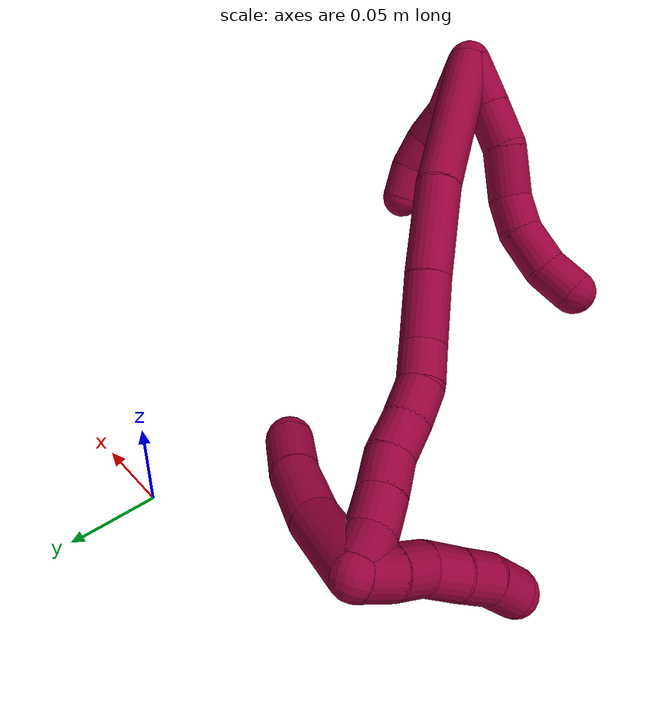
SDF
<sdf version="1.7">
 <world name="default">
  <model name="8">
   <static>0</static>
   <link name="8">
    <collision name="collision-cylinder-e_1_2_8">
     <pose>-0.001712 -0.009309 -0.011027 2.44048 -0.118094 -0.320566</pose>
     <geometry><cylinder><radius>0.0125</radius><length>0.029064</length></cylinder></geometry>
     <surface>
      <friction><ode><mu>1.16</mu><mu2>1.16</mu2><slip1>0</slip1><slip2>0</slip2></ode></friction>
      <contact><ode><kp>1e+06</kp><kd>1</kd><max_vel>0</max_vel><min_depth>0.001</min_depth></ode></contact>
     </surface>
    </collision>
    <visual name="visual-cylinder-e_1_2_8">
     <pose>-0.001712 -0.009309 -0.011027 2.44048 -0.118094 -0.320566</pose>
     <geometry><cylinder><radius>0.0125</radius><length>0.029064</length></cylinder></geometry>
     <material><ambient>0.584314 0 0.227451 1</ambient></material>
    </visual>
    <collision name="collision-cylinder-e_2_8_9">
     <pose>-0.005247 -0.026234 -0.031879 2.48214 -0.145553 -0.419795</pose>
     <geometry><cylinder><radius>0.0125</radius><length>0.025129</length></cylinder></geometry>
     <surface>
      <friction><ode><mu>1.16</mu><mu2>1.16</mu2><slip1>0</slip1><slip2>0</slip2></ode></friction>
      <contact><ode><kp>1e+06</kp><kd>1</kd><max_vel>0</max_vel><min_depth>0.001</min_depth></ode></contact>
     </surface>
    </collision>
    <visual name="visual-cylinder-e_2_8_9">
     <pose>-0.005247 -0.026234 -0.031879 2.48214 -0.145553 -0.419795</pose>
     <geometry><cylinder><radius>0.0125</radius><length>0.025129</length></cylinder></geometry>
     <material><ambient>0.584314 0 0.227451 1</ambient></material>
    </visual>
    <collision name="collision-cylinder-e_3_9_10">
     <pose>-0.005472 -0.04087 -0.054678 2.64569 0.107854 0.420154</pose>
     <geometry><cylinder><radius>0.0125</radius><length>0.029674</length></cylinder></geometry>
     <surface>
      <friction><ode><mu>1.16</mu><mu2>1.16</mu2><slip1>0</slip1><slip2>0</slip2></ode></friction>
      <contact><ode><kp>1e+06</kp><kd>1</kd><max_vel>0</max_vel><min_depth>0.001</min_depth></ode></contact>
     </surface>
    </collision>
    <visual name="visual-cylinder-e_3_9_10">
     <pose>-0.005472 -0.04087 -0.054678 2.64569 0.107854 0.420154</pose>
     <geometry><cylinder><radius>0.0125</radius><length>0.029674</length></cylinder></geometry>
     <material><ambient>0.584314 0 0.227451 1</ambient></material>
    </visual>
    <collision name="collision-cylinder-e_4_10_11">
     <pose>-0.005858 -0.052975 -0.076326 2.61127 -0.194762 -0.690656</pose>
     <geometry><cylinder><radius>0.0125</radius><length>0.020499</length></cylinder></geometry>
     <surface>
      <friction><ode><mu>1.16</mu><mu2>1.16</mu2><slip1>0</slip1><slip2>0</slip2></ode></friction>
      <contact><ode><kp>1e+06</kp><kd>1</kd><max_vel>0</max_vel><min_depth>0.001</min_depth></ode></contact>
     </surface>
    </collision>
    <visual name="visual-cylinder-e_4_10_11">
     <pose>-0.005858 -0.052975 -0.076326 2.61127 -0.194762 -0.690656</pose>
     <geometry><cylinder><radius>0.0125</radius><length>0.020499</length></cylinder></geometry>
     <material><ambient>0.584314 0 0.227451 1</ambient></material>
    </visual>
    <collision name="collision-cylinder-e_5_11_12">
     <pose>-0.011685 -0.066807 -0.093378 2.33469 -0.307247 -0.695969</pose>
     <geometry><cylinder><radius>0.0125</radius><length>0.025411</length></cylinder></geometry>
     <surface>
      <friction><ode><mu>1.16</mu><mu2>1.16</mu2><slip1>0</slip1><slip2>0</slip2></ode></friction>
      <contact><ode><kp>1e+06</kp><kd>1</kd><max_vel>0</max_vel><min_depth>0.001</min_depth></ode></contact>
     </surface>
    </collision>
    <visual name="visual-cylinder-e_5_11_12">
     <pose>-0.011685 -0.066807 -0.093378 2.33469 -0.307247 -0.695969</pose>
     <geometry><cylinder><radius>0.0125</radius><length>0.025411</length></cylinder></geometry>
     <material><ambient>0.584314 0 0.227451 1</ambient></material>
    </visual>
    <collision name="collision-cylinder-e_6_12_6">
     <pose>-0.01969 -0.083565 -0.106306 2.08724 -0.424344 -0.708841</pose>
     <geometry><cylinder><radius>0.0125</radius><length>0.020223</length></cylinder></geometry>
     <surface>
      <friction><ode><mu>1.16</mu><mu2>1.16</mu2><slip1>0</slip1><slip2>0</slip2></ode></friction>
      <contact><ode><kp>1e+06</kp><kd>1</kd><max_vel>0</max_vel><min_depth>0.001</min_depth></ode></contact>
     </surface>
    </collision>
    <visual name="visual-cylinder-e_6_12_6">
     <pose>-0.01969 -0.083565 -0.106306 2.08724 -0.424344 -0.708841</pose>
     <geometry><cylinder><radius>0.0125</radius><length>0.020223</length></cylinder></geometry>
     <material><ambient>0.584314 0 0.227451 1</ambient></material>
    </visual>
    <collision name="collision-cylinder-e_1_2_13">
     <pose>0.016148 -0.003551 -0.009348 2.77862 1.01632 2.50502</pose>
     <geometry><cylinder><radius>0.0125</radius><length>0.037987</length></cylinder></geometry>
     <surface>
      <friction><ode><mu>1.16</mu><mu2>1.16</mu2><slip1>0</slip1><slip2>0</slip2></ode></friction>
      <contact><ode><kp>1e+06</kp><kd>1</kd><max_vel>0</max_vel><min_depth>0.001</min_depth></ode></contact>
     </surface>
    </collision>
    <visual name="visual-cylinder-e_1_2_13">
     <pose>0.016148 -0.003551 -0.009348 2.77862 1.01632 2.50502</pose>
     <geometry><cylinder><radius>0.0125</radius><length>0.037987</length></cylinder></geometry>
     <material><ambient>0.584314 0 0.227451 1</ambient></material>
    </visual>
    <collision name="collision-cylinder-e_2_13_14">
     <pose>0.040471 -0.00588 -0.025592 -2.96627 0.862521 -2.76416</pose>
     <geometry><cylinder><radius>0.0125</radius><length>0.021529</length></cylinder></geometry>
     <surface>
      <friction><ode><mu>1.16</mu><mu2>1.16</mu2><slip1>0</slip1><slip2>0</slip2></ode></friction>
      <contact><ode><kp>1e+06</kp><kd>1</kd><max_vel>0</max_vel><min_depth>0.001</min_depth></ode></contact>
     </surface>
    </collision>
    <visual name="visual-cylinder-e_2_13_14">
     <pose>0.040471 -0.00588 -0.025592 -2.96627 0.862521 -2.76416</pose>
     <geometry><cylinder><radius>0.0125</radius><length>0.021529</length></cylinder></geometry>
     <material><ambient>0.584314 0 0.227451 1</ambient></material>
    </visual>
    <collision name="collision-cylinder-e_3_14_15">
     <pose>0.054157 -0.004328 -0.040894 -3.10228 0.579844 -3.00997</pose>
     <geometry><cylinder><radius>0.0125</radius><length>0.020113</length></cylinder></geometry>
     <surface>
      <friction><ode><mu>1.16</mu><mu2>1.16</mu2><slip1>0</slip1><slip2>0</slip2></ode></friction>
      <contact><ode><kp>1e+06</kp><kd>1</kd><max_vel>0</max_vel><min_depth>0.001</min_depth></ode></contact>
     </surface>
    </collision>
    <visual name="visual-cylinder-e_3_14_15">
     <pose>0.054157 -0.004328 -0.040894 -3.10228 0.579844 -3.00997</pose>
     <geometry><cylinder><radius>0.0125</radius><length>0.020113</length></cylinder></geometry>
     <material><ambient>0.584314 0 0.227451 1</ambient></material>
    </visual>
    <collision name="collision-cylinder-e_4_15_5">
     <pose>0.062912 -0.005382 -0.058855 2.99764 0.324241 2.31119</pose>
     <geometry><cylinder><radius>0.0125</radius><length>0.02037</length></cylinder></geometry>
     <surface>
      <friction><ode><mu>1.16</mu><mu2>1.16</mu2><slip1>0</slip1><slip2>0</slip2></ode></friction>
      <contact><ode><kp>1e+06</kp><kd>1</kd><max_vel>0</max_vel><min_depth>0.001</min_depth></ode></contact>
     </surface>
    </collision>
    <visual name="visual-cylinder-e_4_15_5">
     <pose>0.062912 -0.005382 -0.058855 2.99764 0.324241 2.31119</pose>
     <geometry><cylinder><radius>0.0125</radius><length>0.02037</length></cylinder></geometry>
     <material><ambient>0.584314 0 0.227451 1</ambient></material>
    </visual>
    <collision name="collision-cylinder-e_1_2_16">
     <pose>-0.009141 0.000651 -0.041354 -3.12586 -0.217527 2.99773</pose>
     <geometry><cylinder><radius>0.0125</radius><length>0.084714</length></cylinder></geometry>
     <surface>
      <friction><ode><mu>1.16</mu><mu2>1.16</mu2><slip1>0</slip1><slip2>0</slip2></ode></friction>
      <contact><ode><kp>1e+06</kp><kd>1</kd><max_vel>0</max_vel><min_depth>0.001</min_depth></ode></contact>
     </surface>
    </collision>
    <visual name="visual-cylinder-e_1_2_16">
     <pose>-0.009141 0.000651 -0.041354 -3.12586 -0.217527 2.99773</pose>
     <geometry><cylinder><radius>0.0125</radius><length>0.084714</length></cylinder></geometry>
     <material><ambient>0.584314 0 0.227451 1</ambient></material>
    </visual>
    <collision name="collision-cylinder-e_2_16_17">
     <pose>-0.023208 -0.001921 -0.108893 3.01915 -0.184571 -1.97162</pose>
     <geometry><cylinder><radius>0.0125</radius><length>0.053677</length></cylinder></geometry>
     <surface>
      <friction><ode><mu>1.16</mu><mu2>1.16</mu2><slip1>0</slip1><slip2>0</slip2></ode></friction>
      <contact><ode><kp>1e+06</kp><kd>1</kd><max_vel>0</max_vel><min_depth>0.001</min_depth></ode></contact>
     </surface>
    </collision>
    <visual name="visual-cylinder-e_2_16_17">
     <pose>-0.023208 -0.001921 -0.108893 3.01915 -0.184571 -1.97162</pose>
     <geometry><cylinder><radius>0.0125</radius><length>0.053677</length></cylinder></geometry>
     <material><ambient>0.584314 0 0.227451 1</ambient></material>
    </visual>
    <collision name="collision-cylinder-e_3_17_18">
     <pose>-0.031337 -0.008345 -0.153261 2.96729 -0.171787 -1.55617</pose>
     <geometry><cylinder><radius>0.0125</radius><length>0.037478</length></cylinder></geometry>
     <surface>
      <friction><ode><mu>1.16</mu><mu2>1.16</mu2><slip1>0</slip1><slip2>0</slip2></ode></friction>
      <contact><ode><kp>1e+06</kp><kd>1</kd><max_vel>0</max_vel><min_depth>0.001</min_depth></ode></contact>
     </surface>
    </collision>
    <visual name="visual-cylinder-e_3_17_18">
     <pose>-0.031337 -0.008345 -0.153261 2.96729 -0.171787 -1.55617</pose>
     <geometry><cylinder><radius>0.0125</radius><length>0.037478</length></cylinder></geometry>
     <material><ambient>0.584314 0 0.227451 1</ambient></material>
    </visual>
    <collision name="collision-cylinder-e_4_18_19">
     <pose>-0.039256 -0.012063 -0.181635 3.09103 -0.432949 -2.91263</pose>
     <geometry><cylinder><radius>0.0125</radius><length>0.022481</length></cylinder></geometry>
     <surface>
      <friction><ode><mu>1.16</mu><mu2>1.16</mu2><slip1>0</slip1><slip2>0</slip2></ode></friction>
      <contact><ode><kp>1e+06</kp><kd>1</kd><max_vel>0</max_vel><min_depth>0.001</min_depth></ode></contact>
     </surface>
    </collision>
    <visual name="visual-cylinder-e_4_18_19">
     <pose>-0.039256 -0.012063 -0.181635 3.09103 -0.432949 -2.91263</pose>
     <geometry><cylinder><radius>0.0125</radius><length>0.022481</length></cylinder></geometry>
     <material><ambient>0.584314 0 0.227451 1</ambient></material>
    </visual>
    <collision name="collision-cylinder-e_5_19_20">
     <pose>-0.046997 -0.010633 -0.201406 -2.94126 -0.300017 1.96797</pose>
     <geometry><cylinder><radius>0.0125</radius><length>0.020467</length></cylinder></geometry>
     <surface>
      <friction><ode><mu>1.16</mu><mu2>1.16</mu2><slip1>0</slip1><slip2>0</slip2></ode></friction>
      <contact><ode><kp>1e+06</kp><kd>1</kd><max_vel>0</max_vel><min_depth>0.001</min_depth></ode></contact>
     </surface>
    </collision>
    <visual name="visual-cylinder-e_5_19_20">
     <pose>-0.046997 -0.010633 -0.201406 -2.94126 -0.300017 1.96797</pose>
     <geometry><cylinder><radius>0.0125</radius><length>0.020467</length></cylinder></geometry>
     <material><ambient>0.584314 0 0.227451 1</ambient></material>
    </visual>
    <collision name="collision-cylinder-e_6_20_21">
     <pose>-0.053809 -0.005735 -0.220061 -2.82702 -0.377877 1.75676</pose>
     <geometry><cylinder><radius>0.0125</radius><length>0.020533</length></cylinder></geometry>
     <surface>
      <friction><ode><mu>1.16</mu><mu2>1.16</mu2><slip1>0</slip1><slip2>0</slip2></ode></friction>
      <contact><ode><kp>1e+06</kp><kd>1</kd><max_vel>0</max_vel><min_depth>0.001</min_depth></ode></contact>
     </surface>
    </collision>
    <visual name="visual-cylinder-e_6_20_21">
     <pose>-0.053809 -0.005735 -0.220061 -2.82702 -0.377877 1.75676</pose>
     <geometry><cylinder><radius>0.0125</radius><length>0.020533</length></cylinder></geometry>
     <material><ambient>0.584314 0 0.227451 1</ambient></material>
    </visual>
    <collision name="collision-cylinder-e_7_21_22">
     <pose>-0.062642 -0.001658 -0.237971 -3.01501 -0.515397 2.66963</pose>
     <geometry><cylinder><radius>0.0125</radius><length>0.020475</length></cylinder></geometry>
     <surface>
      <friction><ode><mu>1.16</mu><mu2>1.16</mu2><slip1>0</slip1><slip2>0</slip2></ode></friction>
      <contact><ode><kp>1e+06</kp><kd>1</kd><max_vel>0</max_vel><min_depth>0.001</min_depth></ode></contact>
     </surface>
    </collision>
    <visual name="visual-cylinder-e_7_21_22">
     <pose>-0.062642 -0.001658 -0.237971 -3.01501 -0.515397 2.66963</pose>
     <geometry><cylinder><radius>0.0125</radius><length>0.020475</length></cylinder></geometry>
     <material><ambient>0.584314 0 0.227451 1</ambient></material>
    </visual>
    <collision name="collision-cylinder-e_8_22_23">
     <pose>-0.072522 0.001094 -0.25547 -2.95589 -0.50165 2.44441</pose>
     <geometry><cylinder><radius>0.0125</radius><length>0.020106</length></cylinder></geometry>
     <surface>
      <friction><ode><mu>1.16</mu><mu2>1.16</mu2><slip1>0</slip1><slip2>0</slip2></ode></friction>
      <contact><ode><kp>1e+06</kp><kd>1</kd><max_vel>0</max_vel><min_depth>0.001</min_depth></ode></contact>
     </surface>
    </collision>
    <visual name="visual-cylinder-e_8_22_23">
     <pose>-0.072522 0.001094 -0.25547 -2.95589 -0.50165 2.44441</pose>
     <geometry><cylinder><radius>0.0125</radius><length>0.020106</length></cylinder></geometry>
     <material><ambient>0.584314 0 0.227451 1</ambient></material>
    </visual>
    <collision name="collision-cylinder-e_9_23_1">
     <pose>-0.08343 0.006033 -0.271403 -2.71419 -0.650084 1.99735</pose>
     <geometry><cylinder><radius>0.0125</radius><length>0.020069</length></cylinder></geometry>
     <surface>
      <friction><ode><mu>1.16</mu><mu2>1.16</mu2><slip1>0</slip1><slip2>0</slip2></ode></friction>
      <contact><ode><kp>1e+06</kp><kd>1</kd><max_vel>0</max_vel><min_depth>0.001</min_depth></ode></contact>
     </surface>
    </collision>
    <visual name="visual-cylinder-e_9_23_1">
     <pose>-0.08343 0.006033 -0.271403 -2.71419 -0.650084 1.99735</pose>
     <geometry><cylinder><radius>0.0125</radius><length>0.020069</length></cylinder></geometry>
     <material><ambient>0.584314 0 0.227451 1</ambient></material>
    </visual>
    <collision name="collision-cylinder-e_1_1_24">
     <pose>-0.07059 0.015053 -0.272934 -0.782919 1.16643 -0.531761</pose>
     <geometry><cylinder><radius>0.0125</radius><length>0.041145</length></cylinder></geometry>
     <surface>
      <friction><ode><mu>1.16</mu><mu2>1.16</mu2><slip1>0</slip1><slip2>0</slip2></ode></friction>
      <contact><ode><kp>1e+06</kp><kd>1</kd><max_vel>0</max_vel><min_depth>0.001</min_depth></ode></contact>
     </surface>
    </collision>
    <visual name="visual-cylinder-e_1_1_24">
     <pose>-0.07059 0.015053 -0.272934 -0.782919 1.16643 -0.531761</pose>
     <geometry><cylinder><radius>0.0125</radius><length>0.041145</length></cylinder></geometry>
     <material><ambient>0.584314 0 0.227451 1</ambient></material>
    </visual>
    <collision name="collision-cylinder-e_2_24_25">
     <pose>-0.037771 0.024935 -0.259505 -0.497085 1.00911 -0.278488</pose>
     <geometry><cylinder><radius>0.0125</radius><length>0.032861</length></cylinder></geometry>
     <surface>
      <friction><ode><mu>1.16</mu><mu2>1.16</mu2><slip1>0</slip1><slip2>0</slip2></ode></friction>
      <contact><ode><kp>1e+06</kp><kd>1</kd><max_vel>0</max_vel><min_depth>0.001</min_depth></ode></contact>
     </surface>
    </collision>
    <visual name="visual-cylinder-e_2_24_25">
     <pose>-0.037771 0.024935 -0.259505 -0.497085 1.00911 -0.278488</pose>
     <geometry><cylinder><radius>0.0125</radius><length>0.032861</length></cylinder></geometry>
     <material><ambient>0.584314 0 0.227451 1</ambient></material>
    </visual>
    <collision name="collision-cylinder-e_3_25_4">
     <pose>-0.01301 0.030165 -0.244743 -0.148386 0.988441 -0.080058</pose>
     <geometry><cylinder><radius>0.0125</radius><length>0.025994</length></cylinder></geometry>
     <surface>
      <friction><ode><mu>1.16</mu><mu2>1.16</mu2><slip1>0</slip1><slip2>0</slip2></ode></friction>
      <contact><ode><kp>1e+06</kp><kd>1</kd><max_vel>0</max_vel><min_depth>0.001</min_depth></ode></contact>
     </surface>
    </collision>
    <visual name="visual-cylinder-e_3_25_4">
     <pose>-0.01301 0.030165 -0.244743 -0.148386 0.988441 -0.080058</pose>
     <geometry><cylinder><radius>0.0125</radius><length>0.025994</length></cylinder></geometry>
     <material><ambient>0.584314 0 0.227451 1</ambient></material>
    </visual>
    <collision name="collision-cylinder-e_1_1_26">
     <pose>-0.08599 8.9e-05 -0.277252 1.41858 0.359048 0.30904</pose>
     <geometry><cylinder><radius>0.0125</radius><length>0.02</length></cylinder></geometry>
     <surface>
      <friction><ode><mu>1.16</mu><mu2>1.16</mu2><slip1>0</slip1><slip2>0</slip2></ode></friction>
      <contact><ode><kp>1e+06</kp><kd>1</kd><max_vel>0</max_vel><min_depth>0.001</min_depth></ode></contact>
     </surface>
    </collision>
    <visual name="visual-cylinder-e_1_1_26">
     <pose>-0.08599 8.9e-05 -0.277252 1.41858 0.359048 0.30904</pose>
     <geometry><cylinder><radius>0.0125</radius><length>0.02</length></cylinder></geometry>
     <material><ambient>0.584314 0 0.227451 1</ambient></material>
    </visual>
    <collision name="collision-cylinder-e_2_26_27">
     <pose>-0.078107 -0.017893 -0.273658 1.32662 0.452115 0.355642</pose>
     <geometry><cylinder><radius>0.0125</radius><length>0.02</length></cylinder></geometry>
     <surface>
      <friction><ode><mu>1.16</mu><mu2>1.16</mu2><slip1>0</slip1><slip2>0</slip2></ode></friction>
      <contact><ode><kp>1e+06</kp><kd>1</kd><max_vel>0</max_vel><min_depth>0.001</min_depth></ode></contact>
     </surface>
    </collision>
    <visual name="visual-cylinder-e_2_26_27">
     <pose>-0.078107 -0.017893 -0.273658 1.32662 0.452115 0.355642</pose>
     <geometry><cylinder><radius>0.0125</radius><length>0.02</length></cylinder></geometry>
     <material><ambient>0.584314 0 0.227451 1</ambient></material>
    </visual>
    <collision name="collision-cylinder-e_3_27_28">
     <pose>-0.071853 -0.036423 -0.270871 1.50842 0.189637 0.178224</pose>
     <geometry><cylinder><radius>0.0125</radius><length>0.02</length></cylinder></geometry>
     <surface>
      <friction><ode><mu>1.16</mu><mu2>1.16</mu2><slip1>0</slip1><slip2>0</slip2></ode></friction>
      <contact><ode><kp>1e+06</kp><kd>1</kd><max_vel>0</max_vel><min_depth>0.001</min_depth></ode></contact>
     </surface>
    </collision>
    <visual name="visual-cylinder-e_3_27_28">
     <pose>-0.071853 -0.036423 -0.270871 1.50842 0.189637 0.178224</pose>
     <geometry><cylinder><radius>0.0125</radius><length>0.02</length></cylinder></geometry>
     <material><ambient>0.584314 0 0.227451 1</ambient></material>
    </visual>
    <collision name="collision-cylinder-e_4_28_29">
     <pose>-0.06698 -0.055744 -0.269585 1.50013 0.303424 0.282991</pose>
     <geometry><cylinder><radius>0.0125</radius><length>0.02</length></cylinder></geometry>
     <surface>
      <friction><ode><mu>1.16</mu><mu2>1.16</mu2><slip1>0</slip1><slip2>0</slip2></ode></friction>
      <contact><ode><kp>1e+06</kp><kd>1</kd><max_vel>0</max_vel><min_depth>0.001</min_depth></ode></contact>
     </surface>
    </collision>
    <visual name="visual-cylinder-e_4_28_29">
     <pose>-0.06698 -0.055744 -0.269585 1.50013 0.303424 0.282991</pose>
     <geometry><cylinder><radius>0.0125</radius><length>0.02</length></cylinder></geometry>
     <material><ambient>0.584314 0 0.227451 1</ambient></material>
    </visual>
    <collision name="collision-cylinder-e_5_29_3">
     <pose>-0.060934 -0.07466 -0.270445 1.73257 0.310844 0.364566</pose>
     <geometry><cylinder><radius>0.0125</radius><length>0.02</length></cylinder></geometry>
     <surface>
      <friction><ode><mu>1.16</mu><mu2>1.16</mu2><slip1>0</slip1><slip2>0</slip2></ode></friction>
      <contact><ode><kp>1e+06</kp><kd>1</kd><max_vel>0</max_vel><min_depth>0.001</min_depth></ode></contact>
     </surface>
    </collision>
    <visual name="visual-cylinder-e_5_29_3">
     <pose>-0.060934 -0.07466 -0.270445 1.73257 0.310844 0.364566</pose>
     <geometry><cylinder><radius>0.0125</radius><length>0.02</length></cylinder></geometry>
     <material><ambient>0.584314 0 0.227451 1</ambient></material>
    </visual>
    <collision name="collision-sphere-3">
     <pose>-0.057875 -0.084056 -0.271978 0 -0 0</pose>
     <geometry><sphere><radius>0.0125</radius></sphere></geometry>
     <surface>
      <friction><ode><mu>1.16</mu><mu2>1.16</mu2><slip1>0</slip1><slip2>0</slip2></ode></friction>
      <contact><ode><kp>1e+06</kp><kd>1</kd><max_vel>0</max_vel><min_depth>0.001</min_depth></ode></contact>
     </surface>
    </collision>
    <visual name="visual-sphere-3">
     <pose>-0.057875 -0.084056 -0.271978 0 -0 0</pose>
     <geometry><sphere><radius>0.0125</radius></sphere></geometry>
     <material><ambient>0.584314 0 0.227451 1</ambient></material>
    </visual>
    <collision name="collision-sphere-29">
     <pose>-0.063992 -0.065263 -0.268911 0 -0 0</pose>
     <geometry><sphere><radius>0.0125</radius></sphere></geometry>
     <surface>
      <friction><ode><mu>1.16</mu><mu2>1.16</mu2><slip1>0</slip1><slip2>0</slip2></ode></friction>
      <contact><ode><kp>1e+06</kp><kd>1</kd><max_vel>0</max_vel><min_depth>0.001</min_depth></ode></contact>
     </surface>
    </collision>
    <visual name="visual-sphere-29">
     <pose>-0.063992 -0.065263 -0.268911 0 -0 0</pose>
     <geometry><sphere><radius>0.0125</radius></sphere></geometry>
     <material><ambient>0.584314 0 0.227451 1</ambient></material>
    </visual>
    <collision name="collision-sphere-28">
     <pose>-0.069968 -0.046225 -0.270259 0 -0 0</pose>
     <geometry><sphere><radius>0.0125</radius></sphere></geometry>
     <surface>
      <friction><ode><mu>1.16</mu><mu2>1.16</mu2><slip1>0</slip1><slip2>0</slip2></ode></friction>
      <contact><ode><kp>1e+06</kp><kd>1</kd><max_vel>0</max_vel><min_depth>0.001</min_depth></ode></contact>
     </surface>
    </collision>
    <visual name="visual-sphere-28">
     <pose>-0.069968 -0.046225 -0.270259 0 -0 0</pose>
     <geometry><sphere><radius>0.0125</radius></sphere></geometry>
     <material><ambient>0.584314 0 0.227451 1</ambient></material>
    </visual>
    <collision name="collision-sphere-27">
     <pose>-0.073738 -0.026621 -0.271483 0 -0 0</pose>
     <geometry><sphere><radius>0.0125</radius></sphere></geometry>
     <surface>
      <friction><ode><mu>1.16</mu><mu2>1.16</mu2><slip1>0</slip1><slip2>0</slip2></ode></friction>
      <contact><ode><kp>1e+06</kp><kd>1</kd><max_vel>0</max_vel><min_depth>0.001</min_depth></ode></contact>
     </surface>
    </collision>
    <visual name="visual-sphere-27">
     <pose>-0.073738 -0.026621 -0.271483 0 -0 0</pose>
     <geometry><sphere><radius>0.0125</radius></sphere></geometry>
     <material><ambient>0.584314 0 0.227451 1</ambient></material>
    </visual>
    <collision name="collision-sphere-26">
     <pose>-0.082476 -0.009165 -0.275833 0 -0 0</pose>
     <geometry><sphere><radius>0.0125</radius></sphere></geometry>
     <surface>
      <friction><ode><mu>1.16</mu><mu2>1.16</mu2><slip1>0</slip1><slip2>0</slip2></ode></friction>
      <contact><ode><kp>1e+06</kp><kd>1</kd><max_vel>0</max_vel><min_depth>0.001</min_depth></ode></contact>
     </surface>
    </collision>
    <visual name="visual-sphere-26">
     <pose>-0.082476 -0.009165 -0.275833 0 -0 0</pose>
     <geometry><sphere><radius>0.0125</radius></sphere></geometry>
     <material><ambient>0.584314 0 0.227451 1</ambient></material>
    </visual>
    <collision name="collision-sphere-4">
     <pose>-0.002155 0.031222 -0.237673 0 -0 0</pose>
     <geometry><sphere><radius>0.0125</radius></sphere></geometry>
     <surface>
      <friction><ode><mu>1.16</mu><mu2>1.16</mu2><slip1>0</slip1><slip2>0</slip2></ode></friction>
      <contact><ode><kp>1e+06</kp><kd>1</kd><max_vel>0</max_vel><min_depth>0.001</min_depth></ode></contact>
     </surface>
    </collision>
    <visual name="visual-sphere-4">
     <pose>-0.002155 0.031222 -0.237673 0 -0 0</pose>
     <geometry><sphere><radius>0.0125</radius></sphere></geometry>
     <material><ambient>0.584314 0 0.227451 1</ambient></material>
    </visual>
    <collision name="collision-sphere-25">
     <pose>-0.023865 0.029108 -0.251813 0 -0 0</pose>
     <geometry><sphere><radius>0.0125</radius></sphere></geometry>
     <surface>
      <friction><ode><mu>1.16</mu><mu2>1.16</mu2><slip1>0</slip1><slip2>0</slip2></ode></friction>
      <contact><ode><kp>1e+06</kp><kd>1</kd><max_vel>0</max_vel><min_depth>0.001</min_depth></ode></contact>
     </surface>
    </collision>
    <visual name="visual-sphere-25">
     <pose>-0.023865 0.029108 -0.251813 0 -0 0</pose>
     <geometry><sphere><radius>0.0125</radius></sphere></geometry>
     <material><ambient>0.584314 0 0.227451 1</ambient></material>
    </visual>
    <collision name="collision-sphere-24">
     <pose>-0.051676 0.020762 -0.267197 0 -0 0</pose>
     <geometry><sphere><radius>0.0125</radius></sphere></geometry>
     <surface>
      <friction><ode><mu>1.16</mu><mu2>1.16</mu2><slip1>0</slip1><slip2>0</slip2></ode></friction>
      <contact><ode><kp>1e+06</kp><kd>1</kd><max_vel>0</max_vel><min_depth>0.001</min_depth></ode></contact>
     </surface>
    </collision>
    <visual name="visual-sphere-24">
     <pose>-0.051676 0.020762 -0.267197 0 -0 0</pose>
     <geometry><sphere><radius>0.0125</radius></sphere></geometry>
     <material><ambient>0.584314 0 0.227451 1</ambient></material>
    </visual>
    <collision name="collision-sphere-1">
     <pose>-0.089503 0.009344 -0.278672 0 -0 0</pose>
     <geometry><sphere><radius>0.0125</radius></sphere></geometry>
     <surface>
      <friction><ode><mu>1.16</mu><mu2>1.16</mu2><slip1>0</slip1><slip2>0</slip2></ode></friction>
      <contact><ode><kp>1e+06</kp><kd>1</kd><max_vel>0</max_vel><min_depth>0.001</min_depth></ode></contact>
     </surface>
    </collision>
    <visual name="visual-sphere-1">
     <pose>-0.089503 0.009344 -0.278672 0 -0 0</pose>
     <geometry><sphere><radius>0.0125</radius></sphere></geometry>
     <material><ambient>0.584314 0 0.227451 1</ambient></material>
    </visual>
    <collision name="collision-sphere-23">
     <pose>-0.077357 0.002722 -0.264133 0 -0 0</pose>
     <geometry><sphere><radius>0.0125</radius></sphere></geometry>
     <surface>
      <friction><ode><mu>1.16</mu><mu2>1.16</mu2><slip1>0</slip1><slip2>0</slip2></ode></friction>
      <contact><ode><kp>1e+06</kp><kd>1</kd><max_vel>0</max_vel><min_depth>0.001</min_depth></ode></contact>
     </surface>
    </collision>
    <visual name="visual-sphere-23">
     <pose>-0.077357 0.002722 -0.264133 0 -0 0</pose>
     <geometry><sphere><radius>0.0125</radius></sphere></geometry>
     <material><ambient>0.584314 0 0.227451 1</ambient></material>
    </visual>
    <collision name="collision-sphere-22">
     <pose>-0.067688 -0.000533 -0.246807 0 -0 0</pose>
     <geometry><sphere><radius>0.0125</radius></sphere></geometry>
     <surface>
      <friction><ode><mu>1.16</mu><mu2>1.16</mu2><slip1>0</slip1><slip2>0</slip2></ode></friction>
      <contact><ode><kp>1e+06</kp><kd>1</kd><max_vel>0</max_vel><min_depth>0.001</min_depth></ode></contact>
     </surface>
    </collision>
    <visual name="visual-sphere-22">
     <pose>-0.067688 -0.000533 -0.246807 0 -0 0</pose>
     <geometry><sphere><radius>0.0125</radius></sphere></geometry>
     <material><ambient>0.584314 0 0.227451 1</ambient></material>
    </visual>
    <collision name="collision-sphere-21">
     <pose>-0.057596 -0.002782 -0.229135 0 -0 0</pose>
     <geometry><sphere><radius>0.0125</radius></sphere></geometry>
     <surface>
      <friction><ode><mu>1.16</mu><mu2>1.16</mu2><slip1>0</slip1><slip2>0</slip2></ode></friction>
      <contact><ode><kp>1e+06</kp><kd>1</kd><max_vel>0</max_vel><min_depth>0.001</min_depth></ode></contact>
     </surface>
    </collision>
    <visual name="visual-sphere-21">
     <pose>-0.057596 -0.002782 -0.229135 0 -0 0</pose>
     <geometry><sphere><radius>0.0125</radius></sphere></geometry>
     <material><ambient>0.584314 0 0.227451 1</ambient></material>
    </visual>
    <collision name="collision-sphere-12">
     <pose>-0.015527 -0.075552 -0.101755 0 -0 0</pose>
     <geometry><sphere><radius>0.0125</radius></sphere></geometry>
     <surface>
      <friction><ode><mu>1.16</mu><mu2>1.16</mu2><slip1>0</slip1><slip2>0</slip2></ode></friction>
      <contact><ode><kp>1e+06</kp><kd>1</kd><max_vel>0</max_vel><min_depth>0.001</min_depth></ode></contact>
     </surface>
    </collision>
    <visual name="visual-sphere-12">
     <pose>-0.015527 -0.075552 -0.101755 0 -0 0</pose>
     <geometry><sphere><radius>0.0125</radius></sphere></geometry>
     <material><ambient>0.584314 0 0.227451 1</ambient></material>
    </visual>
    <collision name="collision-sphere-11">
     <pose>-0.007842 -0.058061 -0.085001 0 -0 0</pose>
     <geometry><sphere><radius>0.0125</radius></sphere></geometry>
     <surface>
      <friction><ode><mu>1.16</mu><mu2>1.16</mu2><slip1>0</slip1><slip2>0</slip2></ode></friction>
      <contact><ode><kp>1e+06</kp><kd>1</kd><max_vel>0</max_vel><min_depth>0.001</min_depth></ode></contact>
     </surface>
    </collision>
    <visual name="visual-sphere-11">
     <pose>-0.007842 -0.058061 -0.085001 0 -0 0</pose>
     <geometry><sphere><radius>0.0125</radius></sphere></geometry>
     <material><ambient>0.584314 0 0.227451 1</ambient></material>
    </visual>
    <collision name="collision-sphere-10">
     <pose>-0.003875 -0.047889 -0.067652 0 -0 0</pose>
     <geometry><sphere><radius>0.0125</radius></sphere></geometry>
     <surface>
      <friction><ode><mu>1.16</mu><mu2>1.16</mu2><slip1>0</slip1><slip2>0</slip2></ode></friction>
      <contact><ode><kp>1e+06</kp><kd>1</kd><max_vel>0</max_vel><min_depth>0.001</min_depth></ode></contact>
     </surface>
    </collision>
    <visual name="visual-sphere-10">
     <pose>-0.003875 -0.047889 -0.067652 0 -0 0</pose>
     <geometry><sphere><radius>0.0125</radius></sphere></geometry>
     <material><ambient>0.584314 0 0.227451 1</ambient></material>
    </visual>
    <collision name="collision-sphere-9">
     <pose>-0.007069 -0.033851 -0.041704 0 -0 0</pose>
     <geometry><sphere><radius>0.0125</radius></sphere></geometry>
     <surface>
      <friction><ode><mu>1.16</mu><mu2>1.16</mu2><slip1>0</slip1><slip2>0</slip2></ode></friction>
      <contact><ode><kp>1e+06</kp><kd>1</kd><max_vel>0</max_vel><min_depth>0.001</min_depth></ode></contact>
     </surface>
    </collision>
    <visual name="visual-sphere-9">
     <pose>-0.007069 -0.033851 -0.041704 0 -0 0</pose>
     <geometry><sphere><radius>0.0125</radius></sphere></geometry>
     <material><ambient>0.584314 0 0.227451 1</ambient></material>
    </visual>
    <collision name="collision-sphere-2">
     <geometry><sphere><radius>0.0125</radius></sphere></geometry>
     <surface>
      <friction><ode><mu>1.16</mu><mu2>1.16</mu2><slip1>0</slip1><slip2>0</slip2></ode></friction>
      <contact><ode><kp>1e+06</kp><kd>1</kd><max_vel>0</max_vel><min_depth>0.001</min_depth></ode></contact>
     </surface>
    </collision>
    <visual name="visual-sphere-2">
     <geometry><sphere><radius>0.0125</radius></sphere></geometry>
     <material><ambient>0.584314 0 0.227451 1</ambient></material>
    </visual>
    <collision name="collision-sphere-19">
     <pose>-0.043972 -0.012578 -0.191825 0 -0 0</pose>
     <geometry><sphere><radius>0.0125</radius></sphere></geometry>
     <surface>
      <friction><ode><mu>1.16</mu><mu2>1.16</mu2><slip1>0</slip1><slip2>0</slip2></ode></friction>
      <contact><ode><kp>1e+06</kp><kd>1</kd><max_vel>0</max_vel><min_depth>0.001</min_depth></ode></contact>
     </surface>
    </collision>
    <visual name="visual-sphere-19">
     <pose>-0.043972 -0.012578 -0.191825 0 -0 0</pose>
     <geometry><sphere><radius>0.0125</radius></sphere></geometry>
     <material><ambient>0.584314 0 0.227451 1</ambient></material>
    </visual>
    <collision name="collision-sphere-8">
     <pose>-0.003424 -0.018618 -0.022054 0 -0 0</pose>
     <geometry><sphere><radius>0.0125</radius></sphere></geometry>
     <surface>
      <friction><ode><mu>1.16</mu><mu2>1.16</mu2><slip1>0</slip1><slip2>0</slip2></ode></friction>
      <contact><ode><kp>1e+06</kp><kd>1</kd><max_vel>0</max_vel><min_depth>0.001</min_depth></ode></contact>
     </surface>
    </collision>
    <visual name="visual-sphere-8">
     <pose>-0.003424 -0.018618 -0.022054 0 -0 0</pose>
     <geometry><sphere><radius>0.0125</radius></sphere></geometry>
     <material><ambient>0.584314 0 0.227451 1</ambient></material>
    </visual>
    <collision name="collision-sphere-6">
     <pose>-0.023854 -0.091578 -0.110856 0 -0 0</pose>
     <geometry><sphere><radius>0.0125</radius></sphere></geometry>
     <surface>
      <friction><ode><mu>1.16</mu><mu2>1.16</mu2><slip1>0</slip1><slip2>0</slip2></ode></friction>
      <contact><ode><kp>1e+06</kp><kd>1</kd><max_vel>0</max_vel><min_depth>0.001</min_depth></ode></contact>
     </surface>
    </collision>
    <visual name="visual-sphere-6">
     <pose>-0.023854 -0.091578 -0.110856 0 -0 0</pose>
     <geometry><sphere><radius>0.0125</radius></sphere></geometry>
     <material><ambient>0.584314 0 0.227451 1</ambient></material>
    </visual>
    <collision name="collision-sphere-13">
     <pose>0.032296 -0.007101 -0.018697 0 -0 0</pose>
     <geometry><sphere><radius>0.0125</radius></sphere></geometry>
     <surface>
      <friction><ode><mu>1.16</mu><mu2>1.16</mu2><slip1>0</slip1><slip2>0</slip2></ode></friction>
      <contact><ode><kp>1e+06</kp><kd>1</kd><max_vel>0</max_vel><min_depth>0.001</min_depth></ode></contact>
     </surface>
    </collision>
    <visual name="visual-sphere-13">
     <pose>0.032296 -0.007101 -0.018697 0 -0 0</pose>
     <geometry><sphere><radius>0.0125</radius></sphere></geometry>
     <material><ambient>0.584314 0 0.227451 1</ambient></material>
    </visual>
    <collision name="collision-sphere-14">
     <pose>0.048647 -0.004658 -0.032487 0 -0 0</pose>
     <geometry><sphere><radius>0.0125</radius></sphere></geometry>
     <surface>
      <friction><ode><mu>1.16</mu><mu2>1.16</mu2><slip1>0</slip1><slip2>0</slip2></ode></friction>
      <contact><ode><kp>1e+06</kp><kd>1</kd><max_vel>0</max_vel><min_depth>0.001</min_depth></ode></contact>
     </surface>
    </collision>
    <visual name="visual-sphere-14">
     <pose>0.048647 -0.004658 -0.032487 0 -0 0</pose>
     <geometry><sphere><radius>0.0125</radius></sphere></geometry>
     <material><ambient>0.584314 0 0.227451 1</ambient></material>
    </visual>
    <collision name="collision-sphere-15">
     <pose>0.059667 -0.003997 -0.0493 0 -0 0</pose>
     <geometry><sphere><radius>0.0125</radius></sphere></geometry>
     <surface>
      <friction><ode><mu>1.16</mu><mu2>1.16</mu2><slip1>0</slip1><slip2>0</slip2></ode></friction>
      <contact><ode><kp>1e+06</kp><kd>1</kd><max_vel>0</max_vel><min_depth>0.001</min_depth></ode></contact>
     </surface>
    </collision>
    <visual name="visual-sphere-15">
     <pose>0.059667 -0.003997 -0.0493 0 -0 0</pose>
     <geometry><sphere><radius>0.0125</radius></sphere></geometry>
     <material><ambient>0.584314 0 0.227451 1</ambient></material>
    </visual>
    <collision name="collision-sphere-5">
     <pose>0.066157 -0.006767 -0.06841 0 -0 0</pose>
     <geometry><sphere><radius>0.0125</radius></sphere></geometry>
     <surface>
      <friction><ode><mu>1.16</mu><mu2>1.16</mu2><slip1>0</slip1><slip2>0</slip2></ode></friction>
      <contact><ode><kp>1e+06</kp><kd>1</kd><max_vel>0</max_vel><min_depth>0.001</min_depth></ode></contact>
     </surface>
    </collision>
    <visual name="visual-sphere-5">
     <pose>0.066157 -0.006767 -0.06841 0 -0 0</pose>
     <geometry><sphere><radius>0.0125</radius></sphere></geometry>
     <material><ambient>0.584314 0 0.227451 1</ambient></material>
    </visual>
    <collision name="collision-sphere-16">
     <pose>-0.018283 0.001302 -0.082707 0 -0 0</pose>
     <geometry><sphere><radius>0.0125</radius></sphere></geometry>
     <surface>
      <friction><ode><mu>1.16</mu><mu2>1.16</mu2><slip1>0</slip1><slip2>0</slip2></ode></friction>
      <contact><ode><kp>1e+06</kp><kd>1</kd><max_vel>0</max_vel><min_depth>0.001</min_depth></ode></contact>
     </surface>
    </collision>
    <visual name="visual-sphere-16">
     <pose>-0.018283 0.001302 -0.082707 0 -0 0</pose>
     <geometry><sphere><radius>0.0125</radius></sphere></geometry>
     <material><ambient>0.584314 0 0.227451 1</ambient></material>
    </visual>
    <collision name="collision-sphere-17">
     <pose>-0.028134 -0.005143 -0.135078 0 -0 0</pose>
     <geometry><sphere><radius>0.0125</radius></sphere></geometry>
     <surface>
      <friction><ode><mu>1.16</mu><mu2>1.16</mu2><slip1>0</slip1><slip2>0</slip2></ode></friction>
      <contact><ode><kp>1e+06</kp><kd>1</kd><max_vel>0</max_vel><min_depth>0.001</min_depth></ode></contact>
     </surface>
    </collision>
    <visual name="visual-sphere-17">
     <pose>-0.028134 -0.005143 -0.135078 0 -0 0</pose>
     <geometry><sphere><radius>0.0125</radius></sphere></geometry>
     <material><ambient>0.584314 0 0.227451 1</ambient></material>
    </visual>
    <collision name="collision-sphere-18">
     <pose>-0.03454 -0.011547 -0.171445 0 -0 0</pose>
     <geometry><sphere><radius>0.0125</radius></sphere></geometry>
     <surface>
      <friction><ode><mu>1.16</mu><mu2>1.16</mu2><slip1>0</slip1><slip2>0</slip2></ode></friction>
      <contact><ode><kp>1e+06</kp><kd>1</kd><max_vel>0</max_vel><min_depth>0.001</min_depth></ode></contact>
     </surface>
    </collision>
    <visual name="visual-sphere-18">
     <pose>-0.03454 -0.011547 -0.171445 0 -0 0</pose>
     <geometry><sphere><radius>0.0125</radius></sphere></geometry>
     <material><ambient>0.584314 0 0.227451 1</ambient></material>
    </visual>
    <collision name="collision-sphere-20">
     <pose>-0.050021 -0.008687 -0.210987 0 -0 0</pose>
     <geometry><sphere><radius>0.0125</radius></sphere></geometry>
     <surface>
      <friction><ode><mu>1.16</mu><mu2>1.16</mu2><slip1>0</slip1><slip2>0</slip2></ode></friction>
      <contact><ode><kp>1e+06</kp><kd>1</kd><max_vel>0</max_vel><min_depth>0.001</min_depth></ode></contact>
     </surface>
    </collision>
    <visual name="visual-sphere-20">
     <pose>-0.050021 -0.008687 -0.210987 0 -0 0</pose>
     <geometry><sphere><radius>0.0125</radius></sphere></geometry>
     <material><ambient>0.584314 0 0.227451 1</ambient></material>
    </visual>
    <inertial>
     <pose>-0.026165 -0.012536 -0.144515 0 -0 0</pose>
     <mass>0.75</mass>
     <inertia><ixx>-4.7e-05</ixx><ixy>0</ixy><ixz>0</ixz><iyy>6.1e-05</iyy><iyz>0</iyz><izz>-2e-05</izz></inertia>
    </inertial>
   </link>
   <pose>-0.014935 -0.228115 0.210294 0.533972 0.59163 -0.362593</pose>
  </model>
 </world>
</sdf>
